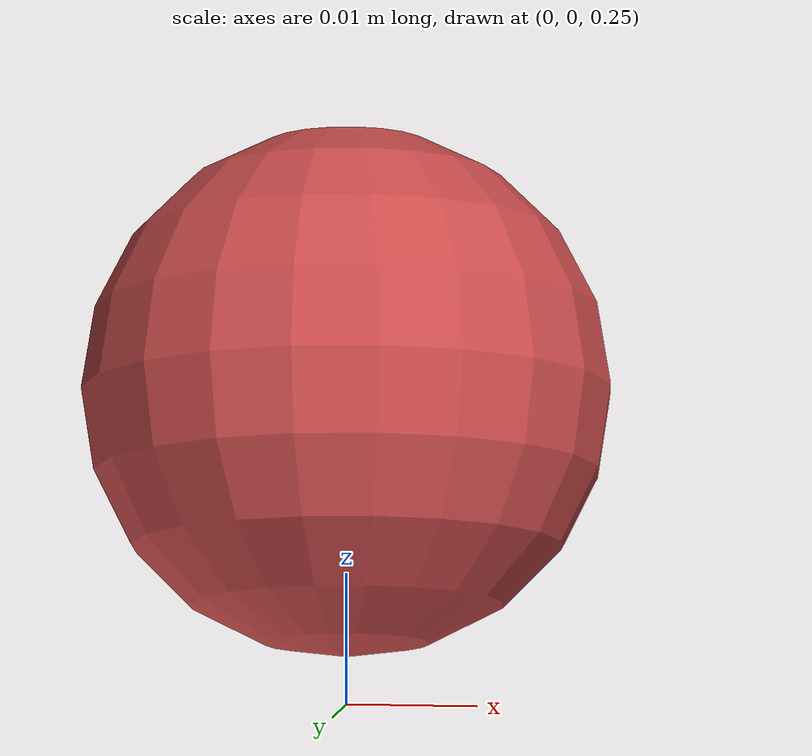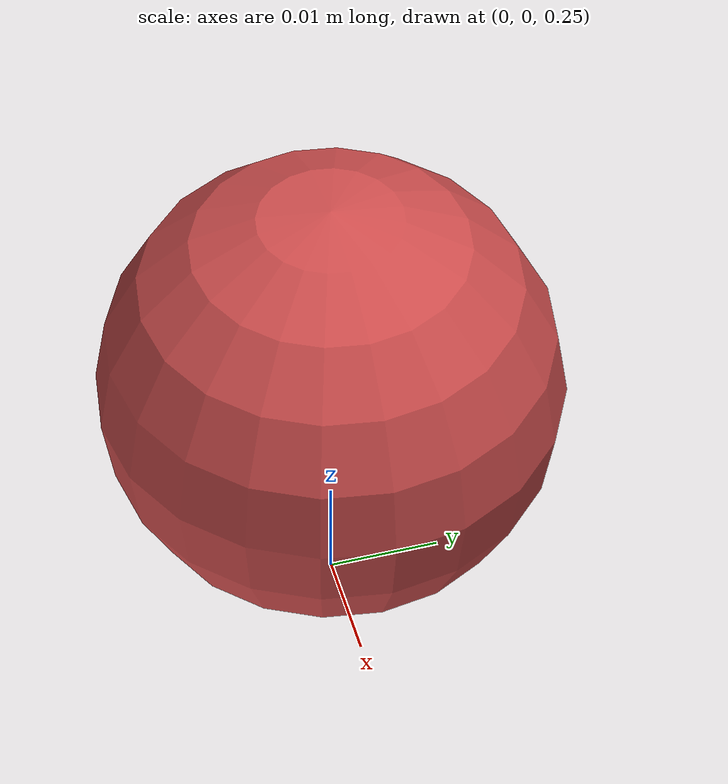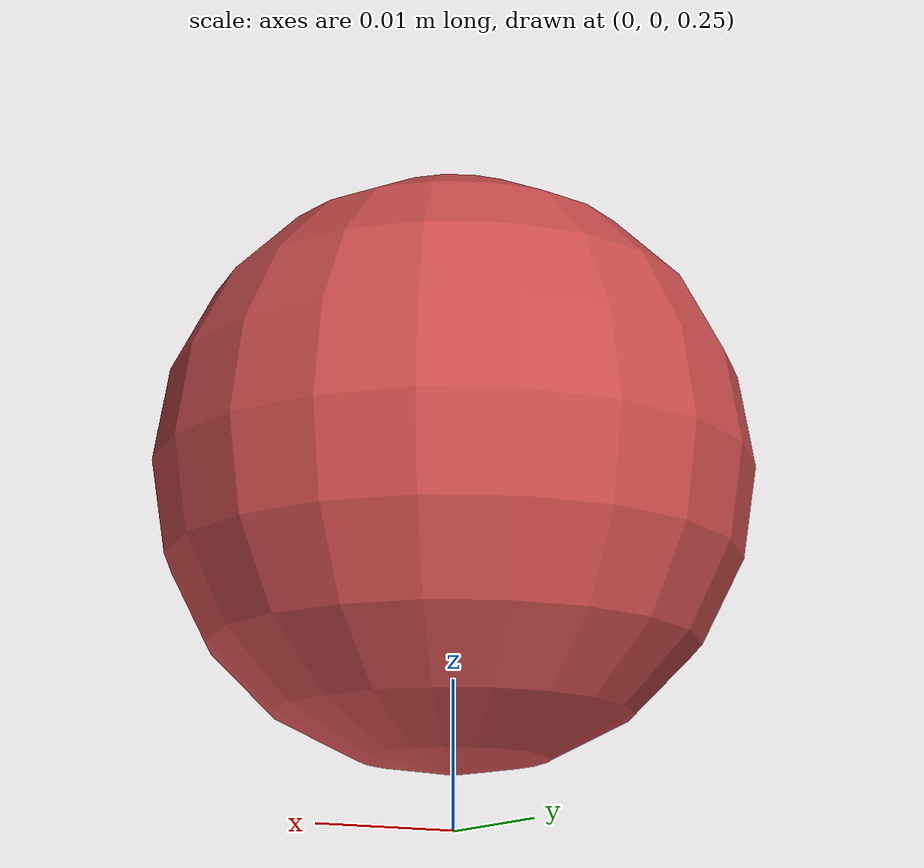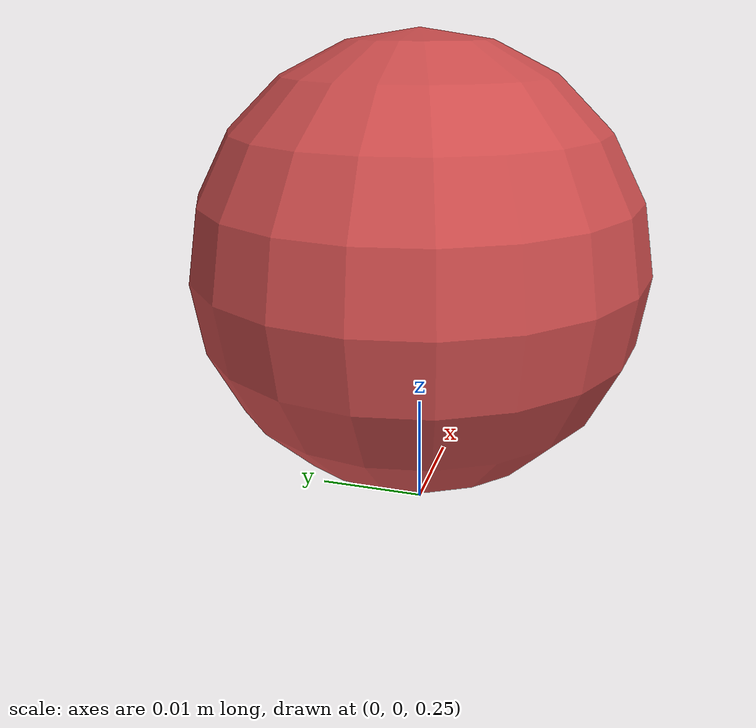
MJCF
<mujoco model="tap_001">
  <option timestep="0.001" gravity="0 0 -9.81"/>

  <visual>
    <headlight ambient="0.5 0.5 0.5"/>
  </visual>

  <asset>
    <texture name="grid" type="2d" builtin="checker" width="512" height="512" rgb1="0.2 0.3 0.4" rgb2="0.3 0.4 0.5"/>
    <material name="grid" texture="grid" texrepeat="1 1" reflectance="0.2"/>
    <material name="finger" rgba="0.8 0.3 0.3 1.0"/>
  </asset>

  <worldbody>
    <!-- Ground plane -->
    <geom name="floor" type="plane" size="2 2 0.1" material="grid"
          condim="6" friction="0.7154172314071224 0.005 0.0001" solref="0.02 0.8292700444871467"/>

    <!-- Sphere -->
    <body name="fingertip" pos="0 0 0.27405587624873184">
      <freejoint/>
      <geom name="finger" type="sphere" size="0.02041929559217974" mass="0.08816880189122721" material="finger"
            condim="6" friction="0.7154172314071224 0.005 0.0001" solref="0.02 0.8292700444871467"/>
      <site name="contact_site" pos="0 0 0" size="0.001"/>
    </body>
  </worldbody>

  <sensor>
    <touch name="finger_touch" site="contact_site"/>
    <framepos name="finger_pos" objtype="site" objname="contact_site"/>
    <framequat name="finger_quat" objtype="site" objname="contact_site"/>
    <framelinvel name="finger_vel" objtype="site" objname="contact_site"/>
  </sensor>
</mujoco>
